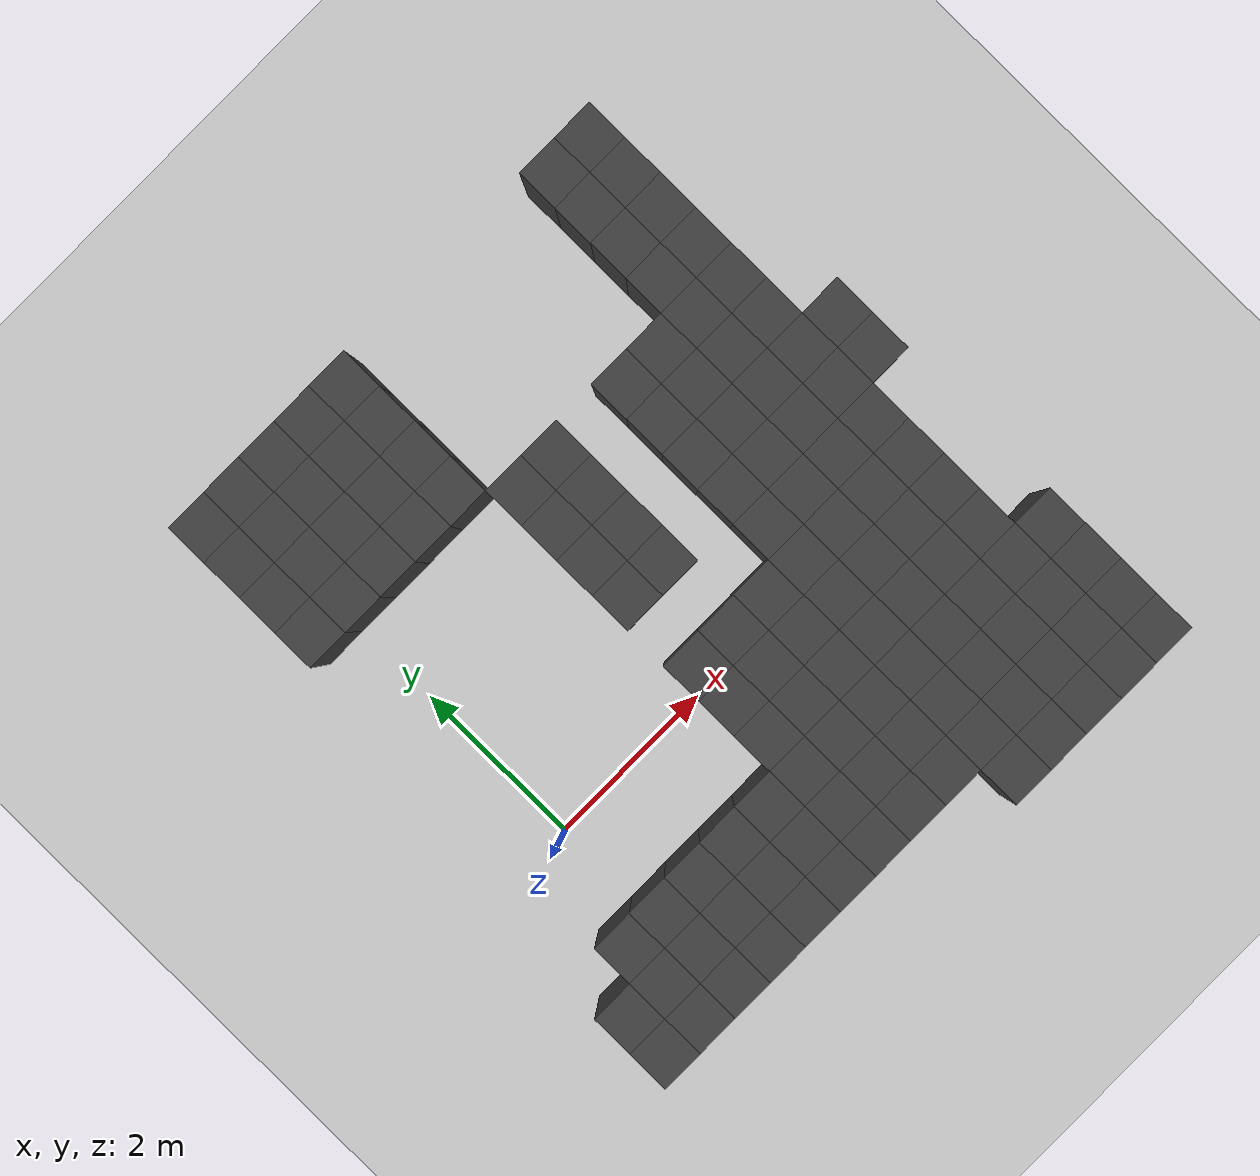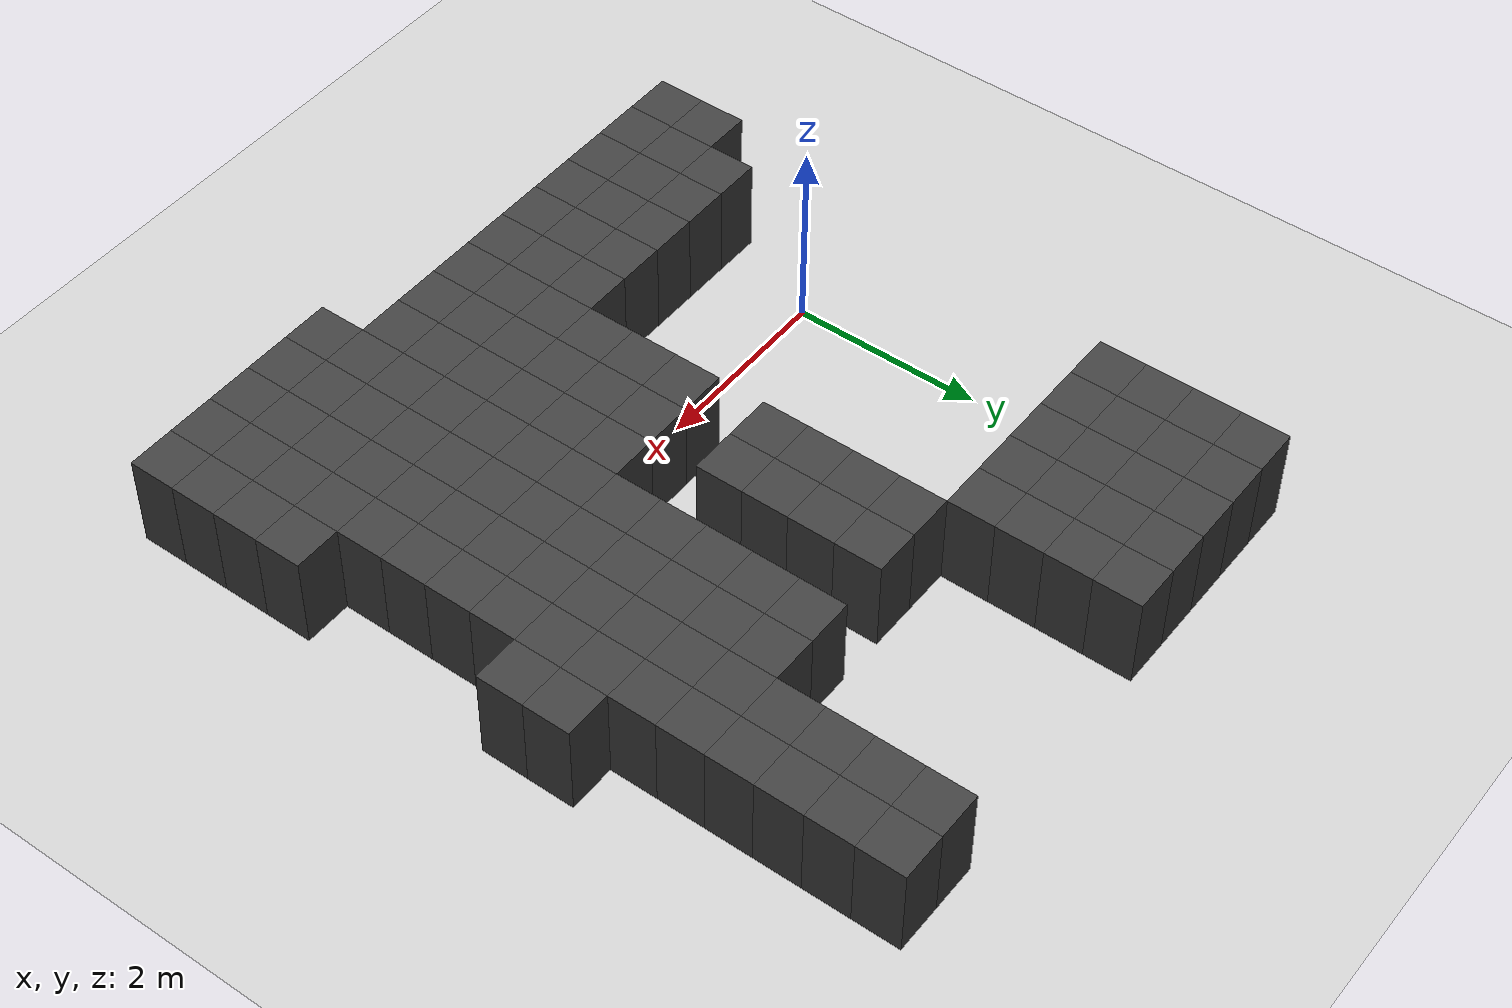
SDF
<sdf version="1.7">
 <world name="map_13994">
  <model name="ground_plane">
   <static>true</static>
   <link name="link">
    <collision name="collision">
     <geometry><plane><normal>0 0 1</normal><size>200 200</size></plane></geometry>
    </collision>
    <visual name="visual">
     <geometry><plane><normal>0 0 1</normal><size>200 200</size></plane></geometry>
     <material><ambient>0.8 0.8 0.8 1</ambient><diffuse>0.8 0.8 0.8 1</diffuse></material>
    </visual>
   </link>
  </model>
  <model name="maze_environment">
   <static>true</static>
   <link name="wall_464">
    <pose>-0.250 4.750 0.500 0 0 0</pose>
    <collision name="col"><geometry><box><size>0.5 0.5 1.0</size></box></geometry></collision>
    <visual name="vis">
     <geometry><box><size>0.5 0.5 1.0</size></box></geometry>
     <material><ambient>0.15 0.15 0.15 1</ambient><diffuse>0.25 0.25 0.25 1</diffuse></material>
    </visual>
   </link>
   <link name="wall_465">
    <pose>0.250 4.750 0.500 0 0 0</pose>
    <collision name="col"><geometry><box><size>0.5 0.5 1.0</size></box></geometry></collision>
    <visual name="vis">
     <geometry><box><size>0.5 0.5 1.0</size></box></geometry>
     <material><ambient>0.15 0.15 0.15 1</ambient><diffuse>0.25 0.25 0.25 1</diffuse></material>
    </visual>
   </link>
   <link name="wall_466">
    <pose>0.750 4.750 0.500 0 0 0</pose>
    <collision name="col"><geometry><box><size>0.5 0.5 1.0</size></box></geometry></collision>
    <visual name="vis">
     <geometry><box><size>0.5 0.5 1.0</size></box></geometry>
     <material><ambient>0.15 0.15 0.15 1</ambient><diffuse>0.25 0.25 0.25 1</diffuse></material>
    </visual>
   </link>
   <link name="wall_467">
    <pose>1.250 4.750 0.500 0 0 0</pose>
    <collision name="col"><geometry><box><size>0.5 0.5 1.0</size></box></geometry></collision>
    <visual name="vis">
     <geometry><box><size>0.5 0.5 1.0</size></box></geometry>
     <material><ambient>0.15 0.15 0.15 1</ambient><diffuse>0.25 0.25 0.25 1</diffuse></material>
    </visual>
   </link>
   <link name="wall_468">
    <pose>1.750 4.750 0.500 0 0 0</pose>
    <collision name="col"><geometry><box><size>0.5 0.5 1.0</size></box></geometry></collision>
    <visual name="vis">
     <geometry><box><size>0.5 0.5 1.0</size></box></geometry>
     <material><ambient>0.15 0.15 0.15 1</ambient><diffuse>0.25 0.25 0.25 1</diffuse></material>
    </visual>
   </link>
   <link name="wall_469">
    <pose>4.750 4.750 0.500 0 0 0</pose>
    <collision name="col"><geometry><box><size>0.5 0.5 1.0</size></box></geometry></collision>
    <visual name="vis">
     <geometry><box><size>0.5 0.5 1.0</size></box></geometry>
     <material><ambient>0.15 0.15 0.15 1</ambient><diffuse>0.25 0.25 0.25 1</diffuse></material>
    </visual>
   </link>
   <link name="wall_470">
    <pose>5.250 4.750 0.500 0 0 0</pose>
    <collision name="col"><geometry><box><size>0.5 0.5 1.0</size></box></geometry></collision>
    <visual name="vis">
     <geometry><box><size>0.5 0.5 1.0</size></box></geometry>
     <material><ambient>0.15 0.15 0.15 1</ambient><diffuse>0.25 0.25 0.25 1</diffuse></material>
    </visual>
   </link>
   <link name="wall_504">
    <pose>-0.250 4.250 0.500 0 0 0</pose>
    <collision name="col"><geometry><box><size>0.5 0.5 1.0</size></box></geometry></collision>
    <visual name="vis">
     <geometry><box><size>0.5 0.5 1.0</size></box></geometry>
     <material><ambient>0.15 0.15 0.15 1</ambient><diffuse>0.25 0.25 0.25 1</diffuse></material>
    </visual>
   </link>
   <link name="wall_505">
    <pose>0.250 4.250 0.500 0 0 0</pose>
    <collision name="col"><geometry><box><size>0.5 0.5 1.0</size></box></geometry></collision>
    <visual name="vis">
     <geometry><box><size>0.5 0.5 1.0</size></box></geometry>
     <material><ambient>0.15 0.15 0.15 1</ambient><diffuse>0.25 0.25 0.25 1</diffuse></material>
    </visual>
   </link>
   <link name="wall_506">
    <pose>0.750 4.250 0.500 0 0 0</pose>
    <collision name="col"><geometry><box><size>0.5 0.5 1.0</size></box></geometry></collision>
    <visual name="vis">
     <geometry><box><size>0.5 0.5 1.0</size></box></geometry>
     <material><ambient>0.15 0.15 0.15 1</ambient><diffuse>0.25 0.25 0.25 1</diffuse></material>
    </visual>
   </link>
   <link name="wall_507">
    <pose>1.250 4.250 0.500 0 0 0</pose>
    <collision name="col"><geometry><box><size>0.5 0.5 1.0</size></box></geometry></collision>
    <visual name="vis">
     <geometry><box><size>0.5 0.5 1.0</size></box></geometry>
     <material><ambient>0.15 0.15 0.15 1</ambient><diffuse>0.25 0.25 0.25 1</diffuse></material>
    </visual>
   </link>
   <link name="wall_508">
    <pose>1.750 4.250 0.500 0 0 0</pose>
    <collision name="col"><geometry><box><size>0.5 0.5 1.0</size></box></geometry></collision>
    <visual name="vis">
     <geometry><box><size>0.5 0.5 1.0</size></box></geometry>
     <material><ambient>0.15 0.15 0.15 1</ambient><diffuse>0.25 0.25 0.25 1</diffuse></material>
    </visual>
   </link>
   <link name="wall_509">
    <pose>4.750 4.250 0.500 0 0 0</pose>
    <collision name="col"><geometry><box><size>0.5 0.5 1.0</size></box></geometry></collision>
    <visual name="vis">
     <geometry><box><size>0.5 0.5 1.0</size></box></geometry>
     <material><ambient>0.15 0.15 0.15 1</ambient><diffuse>0.25 0.25 0.25 1</diffuse></material>
    </visual>
   </link>
   <link name="wall_510">
    <pose>5.250 4.250 0.500 0 0 0</pose>
    <collision name="col"><geometry><box><size>0.5 0.5 1.0</size></box></geometry></collision>
    <visual name="vis">
     <geometry><box><size>0.5 0.5 1.0</size></box></geometry>
     <material><ambient>0.15 0.15 0.15 1</ambient><diffuse>0.25 0.25 0.25 1</diffuse></material>
    </visual>
   </link>
   <link name="wall_544">
    <pose>-0.250 3.750 0.500 0 0 0</pose>
    <collision name="col"><geometry><box><size>0.5 0.5 1.0</size></box></geometry></collision>
    <visual name="vis">
     <geometry><box><size>0.5 0.5 1.0</size></box></geometry>
     <material><ambient>0.15 0.15 0.15 1</ambient><diffuse>0.25 0.25 0.25 1</diffuse></material>
    </visual>
   </link>
   <link name="wall_545">
    <pose>0.250 3.750 0.500 0 0 0</pose>
    <collision name="col"><geometry><box><size>0.5 0.5 1.0</size></box></geometry></collision>
    <visual name="vis">
     <geometry><box><size>0.5 0.5 1.0</size></box></geometry>
     <material><ambient>0.15 0.15 0.15 1</ambient><diffuse>0.25 0.25 0.25 1</diffuse></material>
    </visual>
   </link>
   <link name="wall_546">
    <pose>0.750 3.750 0.500 0 0 0</pose>
    <collision name="col"><geometry><box><size>0.5 0.5 1.0</size></box></geometry></collision>
    <visual name="vis">
     <geometry><box><size>0.5 0.5 1.0</size></box></geometry>
     <material><ambient>0.15 0.15 0.15 1</ambient><diffuse>0.25 0.25 0.25 1</diffuse></material>
    </visual>
   </link>
   <link name="wall_547">
    <pose>1.250 3.750 0.500 0 0 0</pose>
    <collision name="col"><geometry><box><size>0.5 0.5 1.0</size></box></geometry></collision>
    <visual name="vis">
     <geometry><box><size>0.5 0.5 1.0</size></box></geometry>
     <material><ambient>0.15 0.15 0.15 1</ambient><diffuse>0.25 0.25 0.25 1</diffuse></material>
    </visual>
   </link>
   <link name="wall_548">
    <pose>1.750 3.750 0.500 0 0 0</pose>
    <collision name="col"><geometry><box><size>0.5 0.5 1.0</size></box></geometry></collision>
    <visual name="vis">
     <geometry><box><size>0.5 0.5 1.0</size></box></geometry>
     <material><ambient>0.15 0.15 0.15 1</ambient><diffuse>0.25 0.25 0.25 1</diffuse></material>
    </visual>
   </link>
   <link name="wall_549">
    <pose>4.750 3.750 0.500 0 0 0</pose>
    <collision name="col"><geometry><box><size>0.5 0.5 1.0</size></box></geometry></collision>
    <visual name="vis">
     <geometry><box><size>0.5 0.5 1.0</size></box></geometry>
     <material><ambient>0.15 0.15 0.15 1</ambient><diffuse>0.25 0.25 0.25 1</diffuse></material>
    </visual>
   </link>
   <link name="wall_550">
    <pose>5.250 3.750 0.500 0 0 0</pose>
    <collision name="col"><geometry><box><size>0.5 0.5 1.0</size></box></geometry></collision>
    <visual name="vis">
     <geometry><box><size>0.5 0.5 1.0</size></box></geometry>
     <material><ambient>0.15 0.15 0.15 1</ambient><diffuse>0.25 0.25 0.25 1</diffuse></material>
    </visual>
   </link>
   <link name="wall_584">
    <pose>-0.250 3.250 0.500 0 0 0</pose>
    <collision name="col"><geometry><box><size>0.5 0.5 1.0</size></box></geometry></collision>
    <visual name="vis">
     <geometry><box><size>0.5 0.5 1.0</size></box></geometry>
     <material><ambient>0.15 0.15 0.15 1</ambient><diffuse>0.25 0.25 0.25 1</diffuse></material>
    </visual>
   </link>
   <link name="wall_585">
    <pose>0.250 3.250 0.500 0 0 0</pose>
    <collision name="col"><geometry><box><size>0.5 0.5 1.0</size></box></geometry></collision>
    <visual name="vis">
     <geometry><box><size>0.5 0.5 1.0</size></box></geometry>
     <material><ambient>0.15 0.15 0.15 1</ambient><diffuse>0.25 0.25 0.25 1</diffuse></material>
    </visual>
   </link>
   <link name="wall_586">
    <pose>0.750 3.250 0.500 0 0 0</pose>
    <collision name="col"><geometry><box><size>0.5 0.5 1.0</size></box></geometry></collision>
    <visual name="vis">
     <geometry><box><size>0.5 0.5 1.0</size></box></geometry>
     <material><ambient>0.15 0.15 0.15 1</ambient><diffuse>0.25 0.25 0.25 1</diffuse></material>
    </visual>
   </link>
   <link name="wall_587">
    <pose>1.250 3.250 0.500 0 0 0</pose>
    <collision name="col"><geometry><box><size>0.5 0.5 1.0</size></box></geometry></collision>
    <visual name="vis">
     <geometry><box><size>0.5 0.5 1.0</size></box></geometry>
     <material><ambient>0.15 0.15 0.15 1</ambient><diffuse>0.25 0.25 0.25 1</diffuse></material>
    </visual>
   </link>
   <link name="wall_588">
    <pose>1.750 3.250 0.500 0 0 0</pose>
    <collision name="col"><geometry><box><size>0.5 0.5 1.0</size></box></geometry></collision>
    <visual name="vis">
     <geometry><box><size>0.5 0.5 1.0</size></box></geometry>
     <material><ambient>0.15 0.15 0.15 1</ambient><diffuse>0.25 0.25 0.25 1</diffuse></material>
    </visual>
   </link>
   <link name="wall_589">
    <pose>4.750 3.250 0.500 0 0 0</pose>
    <collision name="col"><geometry><box><size>0.5 0.5 1.0</size></box></geometry></collision>
    <visual name="vis">
     <geometry><box><size>0.5 0.5 1.0</size></box></geometry>
     <material><ambient>0.15 0.15 0.15 1</ambient><diffuse>0.25 0.25 0.25 1</diffuse></material>
    </visual>
   </link>
   <link name="wall_590">
    <pose>5.250 3.250 0.500 0 0 0</pose>
    <collision name="col"><geometry><box><size>0.5 0.5 1.0</size></box></geometry></collision>
    <visual name="vis">
     <geometry><box><size>0.5 0.5 1.0</size></box></geometry>
     <material><ambient>0.15 0.15 0.15 1</ambient><diffuse>0.25 0.25 0.25 1</diffuse></material>
    </visual>
   </link>
   <link name="wall_621">
    <pose>2.250 2.750 0.500 0 0 0</pose>
    <collision name="col"><geometry><box><size>0.5 0.5 1.0</size></box></geometry></collision>
    <visual name="vis">
     <geometry><box><size>0.5 0.5 1.0</size></box></geometry>
     <material><ambient>0.15 0.15 0.15 1</ambient><diffuse>0.25 0.25 0.25 1</diffuse></material>
    </visual>
   </link>
   <link name="wall_622">
    <pose>2.750 2.750 0.500 0 0 0</pose>
    <collision name="col"><geometry><box><size>0.5 0.5 1.0</size></box></geometry></collision>
    <visual name="vis">
     <geometry><box><size>0.5 0.5 1.0</size></box></geometry>
     <material><ambient>0.15 0.15 0.15 1</ambient><diffuse>0.25 0.25 0.25 1</diffuse></material>
    </visual>
   </link>
   <link name="wall_623">
    <pose>3.750 2.750 0.500 0 0 0</pose>
    <collision name="col"><geometry><box><size>0.5 0.5 1.0</size></box></geometry></collision>
    <visual name="vis">
     <geometry><box><size>0.5 0.5 1.0</size></box></geometry>
     <material><ambient>0.15 0.15 0.15 1</ambient><diffuse>0.25 0.25 0.25 1</diffuse></material>
    </visual>
   </link>
   <link name="wall_624">
    <pose>4.250 2.750 0.500 0 0 0</pose>
    <collision name="col"><geometry><box><size>0.5 0.5 1.0</size></box></geometry></collision>
    <visual name="vis">
     <geometry><box><size>0.5 0.5 1.0</size></box></geometry>
     <material><ambient>0.15 0.15 0.15 1</ambient><diffuse>0.25 0.25 0.25 1</diffuse></material>
    </visual>
   </link>
   <link name="wall_625">
    <pose>4.750 2.750 0.500 0 0 0</pose>
    <collision name="col"><geometry><box><size>0.5 0.5 1.0</size></box></geometry></collision>
    <visual name="vis">
     <geometry><box><size>0.5 0.5 1.0</size></box></geometry>
     <material><ambient>0.15 0.15 0.15 1</ambient><diffuse>0.25 0.25 0.25 1</diffuse></material>
    </visual>
   </link>
   <link name="wall_626">
    <pose>5.250 2.750 0.500 0 0 0</pose>
    <collision name="col"><geometry><box><size>0.5 0.5 1.0</size></box></geometry></collision>
    <visual name="vis">
     <geometry><box><size>0.5 0.5 1.0</size></box></geometry>
     <material><ambient>0.15 0.15 0.15 1</ambient><diffuse>0.25 0.25 0.25 1</diffuse></material>
    </visual>
   </link>
   <link name="wall_650">
    <pose>2.250 2.250 0.500 0 0 0</pose>
    <collision name="col"><geometry><box><size>0.5 0.5 1.0</size></box></geometry></collision>
    <visual name="vis">
     <geometry><box><size>0.5 0.5 1.0</size></box></geometry>
     <material><ambient>0.15 0.15 0.15 1</ambient><diffuse>0.25 0.25 0.25 1</diffuse></material>
    </visual>
   </link>
   <link name="wall_651">
    <pose>2.750 2.250 0.500 0 0 0</pose>
    <collision name="col"><geometry><box><size>0.5 0.5 1.0</size></box></geometry></collision>
    <visual name="vis">
     <geometry><box><size>0.5 0.5 1.0</size></box></geometry>
     <material><ambient>0.15 0.15 0.15 1</ambient><diffuse>0.25 0.25 0.25 1</diffuse></material>
    </visual>
   </link>
   <link name="wall_652">
    <pose>3.750 2.250 0.500 0 0 0</pose>
    <collision name="col"><geometry><box><size>0.5 0.5 1.0</size></box></geometry></collision>
    <visual name="vis">
     <geometry><box><size>0.5 0.5 1.0</size></box></geometry>
     <material><ambient>0.15 0.15 0.15 1</ambient><diffuse>0.25 0.25 0.25 1</diffuse></material>
    </visual>
   </link>
   <link name="wall_653">
    <pose>4.250 2.250 0.500 0 0 0</pose>
    <collision name="col"><geometry><box><size>0.5 0.5 1.0</size></box></geometry></collision>
    <visual name="vis">
     <geometry><box><size>0.5 0.5 1.0</size></box></geometry>
     <material><ambient>0.15 0.15 0.15 1</ambient><diffuse>0.25 0.25 0.25 1</diffuse></material>
    </visual>
   </link>
   <link name="wall_654">
    <pose>4.750 2.250 0.500 0 0 0</pose>
    <collision name="col"><geometry><box><size>0.5 0.5 1.0</size></box></geometry></collision>
    <visual name="vis">
     <geometry><box><size>0.5 0.5 1.0</size></box></geometry>
     <material><ambient>0.15 0.15 0.15 1</ambient><diffuse>0.25 0.25 0.25 1</diffuse></material>
    </visual>
   </link>
   <link name="wall_655">
    <pose>5.250 2.250 0.500 0 0 0</pose>
    <collision name="col"><geometry><box><size>0.5 0.5 1.0</size></box></geometry></collision>
    <visual name="vis">
     <geometry><box><size>0.5 0.5 1.0</size></box></geometry>
     <material><ambient>0.15 0.15 0.15 1</ambient><diffuse>0.25 0.25 0.25 1</diffuse></material>
    </visual>
   </link>
   <link name="wall_679">
    <pose>2.250 1.750 0.500 0 0 0</pose>
    <collision name="col"><geometry><box><size>0.5 0.5 1.0</size></box></geometry></collision>
    <visual name="vis">
     <geometry><box><size>0.5 0.5 1.0</size></box></geometry>
     <material><ambient>0.15 0.15 0.15 1</ambient><diffuse>0.25 0.25 0.25 1</diffuse></material>
    </visual>
   </link>
   <link name="wall_680">
    <pose>2.750 1.750 0.500 0 0 0</pose>
    <collision name="col"><geometry><box><size>0.5 0.5 1.0</size></box></geometry></collision>
    <visual name="vis">
     <geometry><box><size>0.5 0.5 1.0</size></box></geometry>
     <material><ambient>0.15 0.15 0.15 1</ambient><diffuse>0.25 0.25 0.25 1</diffuse></material>
    </visual>
   </link>
   <link name="wall_681">
    <pose>3.750 1.750 0.500 0 0 0</pose>
    <collision name="col"><geometry><box><size>0.5 0.5 1.0</size></box></geometry></collision>
    <visual name="vis">
     <geometry><box><size>0.5 0.5 1.0</size></box></geometry>
     <material><ambient>0.15 0.15 0.15 1</ambient><diffuse>0.25 0.25 0.25 1</diffuse></material>
    </visual>
   </link>
   <link name="wall_682">
    <pose>4.250 1.750 0.500 0 0 0</pose>
    <collision name="col"><geometry><box><size>0.5 0.5 1.0</size></box></geometry></collision>
    <visual name="vis">
     <geometry><box><size>0.5 0.5 1.0</size></box></geometry>
     <material><ambient>0.15 0.15 0.15 1</ambient><diffuse>0.25 0.25 0.25 1</diffuse></material>
    </visual>
   </link>
   <link name="wall_683">
    <pose>4.750 1.750 0.500 0 0 0</pose>
    <collision name="col"><geometry><box><size>0.5 0.5 1.0</size></box></geometry></collision>
    <visual name="vis">
     <geometry><box><size>0.5 0.5 1.0</size></box></geometry>
     <material><ambient>0.15 0.15 0.15 1</ambient><diffuse>0.25 0.25 0.25 1</diffuse></material>
    </visual>
   </link>
   <link name="wall_684">
    <pose>5.250 1.750 0.500 0 0 0</pose>
    <collision name="col"><geometry><box><size>0.5 0.5 1.0</size></box></geometry></collision>
    <visual name="vis">
     <geometry><box><size>0.5 0.5 1.0</size></box></geometry>
     <material><ambient>0.15 0.15 0.15 1</ambient><diffuse>0.25 0.25 0.25 1</diffuse></material>
    </visual>
   </link>
   <link name="wall_685">
    <pose>5.750 1.750 0.500 0 0 0</pose>
    <collision name="col"><geometry><box><size>0.5 0.5 1.0</size></box></geometry></collision>
    <visual name="vis">
     <geometry><box><size>0.5 0.5 1.0</size></box></geometry>
     <material><ambient>0.15 0.15 0.15 1</ambient><diffuse>0.25 0.25 0.25 1</diffuse></material>
    </visual>
   </link>
   <link name="wall_711">
    <pose>2.250 1.250 0.500 0 0 0</pose>
    <collision name="col"><geometry><box><size>0.5 0.5 1.0</size></box></geometry></collision>
    <visual name="vis">
     <geometry><box><size>0.5 0.5 1.0</size></box></geometry>
     <material><ambient>0.15 0.15 0.15 1</ambient><diffuse>0.25 0.25 0.25 1</diffuse></material>
    </visual>
   </link>
   <link name="wall_712">
    <pose>2.750 1.250 0.500 0 0 0</pose>
    <collision name="col"><geometry><box><size>0.5 0.5 1.0</size></box></geometry></collision>
    <visual name="vis">
     <geometry><box><size>0.5 0.5 1.0</size></box></geometry>
     <material><ambient>0.15 0.15 0.15 1</ambient><diffuse>0.25 0.25 0.25 1</diffuse></material>
    </visual>
   </link>
   <link name="wall_713">
    <pose>3.750 1.250 0.500 0 0 0</pose>
    <collision name="col"><geometry><box><size>0.5 0.5 1.0</size></box></geometry></collision>
    <visual name="vis">
     <geometry><box><size>0.5 0.5 1.0</size></box></geometry>
     <material><ambient>0.15 0.15 0.15 1</ambient><diffuse>0.25 0.25 0.25 1</diffuse></material>
    </visual>
   </link>
   <link name="wall_714">
    <pose>4.250 1.250 0.500 0 0 0</pose>
    <collision name="col"><geometry><box><size>0.5 0.5 1.0</size></box></geometry></collision>
    <visual name="vis">
     <geometry><box><size>0.5 0.5 1.0</size></box></geometry>
     <material><ambient>0.15 0.15 0.15 1</ambient><diffuse>0.25 0.25 0.25 1</diffuse></material>
    </visual>
   </link>
   <link name="wall_715">
    <pose>4.750 1.250 0.500 0 0 0</pose>
    <collision name="col"><geometry><box><size>0.5 0.5 1.0</size></box></geometry></collision>
    <visual name="vis">
     <geometry><box><size>0.5 0.5 1.0</size></box></geometry>
     <material><ambient>0.15 0.15 0.15 1</ambient><diffuse>0.25 0.25 0.25 1</diffuse></material>
    </visual>
   </link>
   <link name="wall_716">
    <pose>5.250 1.250 0.500 0 0 0</pose>
    <collision name="col"><geometry><box><size>0.5 0.5 1.0</size></box></geometry></collision>
    <visual name="vis">
     <geometry><box><size>0.5 0.5 1.0</size></box></geometry>
     <material><ambient>0.15 0.15 0.15 1</ambient><diffuse>0.25 0.25 0.25 1</diffuse></material>
    </visual>
   </link>
   <link name="wall_717">
    <pose>5.750 1.250 0.500 0 0 0</pose>
    <collision name="col"><geometry><box><size>0.5 0.5 1.0</size></box></geometry></collision>
    <visual name="vis">
     <geometry><box><size>0.5 0.5 1.0</size></box></geometry>
     <material><ambient>0.15 0.15 0.15 1</ambient><diffuse>0.25 0.25 0.25 1</diffuse></material>
    </visual>
   </link>
   <link name="wall_744">
    <pose>3.750 0.750 0.500 0 0 0</pose>
    <collision name="col"><geometry><box><size>0.5 0.5 1.0</size></box></geometry></collision>
    <visual name="vis">
     <geometry><box><size>0.5 0.5 1.0</size></box></geometry>
     <material><ambient>0.15 0.15 0.15 1</ambient><diffuse>0.25 0.25 0.25 1</diffuse></material>
    </visual>
   </link>
   <link name="wall_745">
    <pose>4.250 0.750 0.500 0 0 0</pose>
    <collision name="col"><geometry><box><size>0.5 0.5 1.0</size></box></geometry></collision>
    <visual name="vis">
     <geometry><box><size>0.5 0.5 1.0</size></box></geometry>
     <material><ambient>0.15 0.15 0.15 1</ambient><diffuse>0.25 0.25 0.25 1</diffuse></material>
    </visual>
   </link>
   <link name="wall_746">
    <pose>4.750 0.750 0.500 0 0 0</pose>
    <collision name="col"><geometry><box><size>0.5 0.5 1.0</size></box></geometry></collision>
    <visual name="vis">
     <geometry><box><size>0.5 0.5 1.0</size></box></geometry>
     <material><ambient>0.15 0.15 0.15 1</ambient><diffuse>0.25 0.25 0.25 1</diffuse></material>
    </visual>
   </link>
   <link name="wall_747">
    <pose>5.250 0.750 0.500 0 0 0</pose>
    <collision name="col"><geometry><box><size>0.5 0.5 1.0</size></box></geometry></collision>
    <visual name="vis">
     <geometry><box><size>0.5 0.5 1.0</size></box></geometry>
     <material><ambient>0.15 0.15 0.15 1</ambient><diffuse>0.25 0.25 0.25 1</diffuse></material>
    </visual>
   </link>
   <link name="wall_770">
    <pose>2.250 0.250 0.500 0 0 0</pose>
    <collision name="col"><geometry><box><size>0.5 0.5 1.0</size></box></geometry></collision>
    <visual name="vis">
     <geometry><box><size>0.5 0.5 1.0</size></box></geometry>
     <material><ambient>0.15 0.15 0.15 1</ambient><diffuse>0.25 0.25 0.25 1</diffuse></material>
    </visual>
   </link>
   <link name="wall_771">
    <pose>2.750 0.250 0.500 0 0 0</pose>
    <collision name="col"><geometry><box><size>0.5 0.5 1.0</size></box></geometry></collision>
    <visual name="vis">
     <geometry><box><size>0.5 0.5 1.0</size></box></geometry>
     <material><ambient>0.15 0.15 0.15 1</ambient><diffuse>0.25 0.25 0.25 1</diffuse></material>
    </visual>
   </link>
   <link name="wall_772">
    <pose>3.250 0.250 0.500 0 0 0</pose>
    <collision name="col"><geometry><box><size>0.5 0.5 1.0</size></box></geometry></collision>
    <visual name="vis">
     <geometry><box><size>0.5 0.5 1.0</size></box></geometry>
     <material><ambient>0.15 0.15 0.15 1</ambient><diffuse>0.25 0.25 0.25 1</diffuse></material>
    </visual>
   </link>
   <link name="wall_773">
    <pose>3.750 0.250 0.500 0 0 0</pose>
    <collision name="col"><geometry><box><size>0.5 0.5 1.0</size></box></geometry></collision>
    <visual name="vis">
     <geometry><box><size>0.5 0.5 1.0</size></box></geometry>
     <material><ambient>0.15 0.15 0.15 1</ambient><diffuse>0.25 0.25 0.25 1</diffuse></material>
    </visual>
   </link>
   <link name="wall_774">
    <pose>4.250 0.250 0.500 0 0 0</pose>
    <collision name="col"><geometry><box><size>0.5 0.5 1.0</size></box></geometry></collision>
    <visual name="vis">
     <geometry><box><size>0.5 0.5 1.0</size></box></geometry>
     <material><ambient>0.15 0.15 0.15 1</ambient><diffuse>0.25 0.25 0.25 1</diffuse></material>
    </visual>
   </link>
   <link name="wall_775">
    <pose>4.750 0.250 0.500 0 0 0</pose>
    <collision name="col"><geometry><box><size>0.5 0.5 1.0</size></box></geometry></collision>
    <visual name="vis">
     <geometry><box><size>0.5 0.5 1.0</size></box></geometry>
     <material><ambient>0.15 0.15 0.15 1</ambient><diffuse>0.25 0.25 0.25 1</diffuse></material>
    </visual>
   </link>
   <link name="wall_776">
    <pose>5.250 0.250 0.500 0 0 0</pose>
    <collision name="col"><geometry><box><size>0.5 0.5 1.0</size></box></geometry></collision>
    <visual name="vis">
     <geometry><box><size>0.5 0.5 1.0</size></box></geometry>
     <material><ambient>0.15 0.15 0.15 1</ambient><diffuse>0.25 0.25 0.25 1</diffuse></material>
    </visual>
   </link>
   <link name="wall_805">
    <pose>2.250 -0.250 0.500 0 0 0</pose>
    <collision name="col"><geometry><box><size>0.5 0.5 1.0</size></box></geometry></collision>
    <visual name="vis">
     <geometry><box><size>0.5 0.5 1.0</size></box></geometry>
     <material><ambient>0.15 0.15 0.15 1</ambient><diffuse>0.25 0.25 0.25 1</diffuse></material>
    </visual>
   </link>
   <link name="wall_806">
    <pose>2.750 -0.250 0.500 0 0 0</pose>
    <collision name="col"><geometry><box><size>0.5 0.5 1.0</size></box></geometry></collision>
    <visual name="vis">
     <geometry><box><size>0.5 0.5 1.0</size></box></geometry>
     <material><ambient>0.15 0.15 0.15 1</ambient><diffuse>0.25 0.25 0.25 1</diffuse></material>
    </visual>
   </link>
   <link name="wall_807">
    <pose>3.250 -0.250 0.500 0 0 0</pose>
    <collision name="col"><geometry><box><size>0.5 0.5 1.0</size></box></geometry></collision>
    <visual name="vis">
     <geometry><box><size>0.5 0.5 1.0</size></box></geometry>
     <material><ambient>0.15 0.15 0.15 1</ambient><diffuse>0.25 0.25 0.25 1</diffuse></material>
    </visual>
   </link>
   <link name="wall_808">
    <pose>3.750 -0.250 0.500 0 0 0</pose>
    <collision name="col"><geometry><box><size>0.5 0.5 1.0</size></box></geometry></collision>
    <visual name="vis">
     <geometry><box><size>0.5 0.5 1.0</size></box></geometry>
     <material><ambient>0.15 0.15 0.15 1</ambient><diffuse>0.25 0.25 0.25 1</diffuse></material>
    </visual>
   </link>
   <link name="wall_809">
    <pose>4.250 -0.250 0.500 0 0 0</pose>
    <collision name="col"><geometry><box><size>0.5 0.5 1.0</size></box></geometry></collision>
    <visual name="vis">
     <geometry><box><size>0.5 0.5 1.0</size></box></geometry>
     <material><ambient>0.15 0.15 0.15 1</ambient><diffuse>0.25 0.25 0.25 1</diffuse></material>
    </visual>
   </link>
   <link name="wall_810">
    <pose>4.750 -0.250 0.500 0 0 0</pose>
    <collision name="col"><geometry><box><size>0.5 0.5 1.0</size></box></geometry></collision>
    <visual name="vis">
     <geometry><box><size>0.5 0.5 1.0</size></box></geometry>
     <material><ambient>0.15 0.15 0.15 1</ambient><diffuse>0.25 0.25 0.25 1</diffuse></material>
    </visual>
   </link>
   <link name="wall_811">
    <pose>5.250 -0.250 0.500 0 0 0</pose>
    <collision name="col"><geometry><box><size>0.5 0.5 1.0</size></box></geometry></collision>
    <visual name="vis">
     <geometry><box><size>0.5 0.5 1.0</size></box></geometry>
     <material><ambient>0.15 0.15 0.15 1</ambient><diffuse>0.25 0.25 0.25 1</diffuse></material>
    </visual>
   </link>
   <link name="wall_836">
    <pose>2.250 -0.750 0.500 0 0 0</pose>
    <collision name="col"><geometry><box><size>0.5 0.5 1.0</size></box></geometry></collision>
    <visual name="vis">
     <geometry><box><size>0.5 0.5 1.0</size></box></geometry>
     <material><ambient>0.15 0.15 0.15 1</ambient><diffuse>0.25 0.25 0.25 1</diffuse></material>
    </visual>
   </link>
   <link name="wall_837">
    <pose>2.750 -0.750 0.500 0 0 0</pose>
    <collision name="col"><geometry><box><size>0.5 0.5 1.0</size></box></geometry></collision>
    <visual name="vis">
     <geometry><box><size>0.5 0.5 1.0</size></box></geometry>
     <material><ambient>0.15 0.15 0.15 1</ambient><diffuse>0.25 0.25 0.25 1</diffuse></material>
    </visual>
   </link>
   <link name="wall_838">
    <pose>3.250 -0.750 0.500 0 0 0</pose>
    <collision name="col"><geometry><box><size>0.5 0.5 1.0</size></box></geometry></collision>
    <visual name="vis">
     <geometry><box><size>0.5 0.5 1.0</size></box></geometry>
     <material><ambient>0.15 0.15 0.15 1</ambient><diffuse>0.25 0.25 0.25 1</diffuse></material>
    </visual>
   </link>
   <link name="wall_839">
    <pose>3.750 -0.750 0.500 0 0 0</pose>
    <collision name="col"><geometry><box><size>0.5 0.5 1.0</size></box></geometry></collision>
    <visual name="vis">
     <geometry><box><size>0.5 0.5 1.0</size></box></geometry>
     <material><ambient>0.15 0.15 0.15 1</ambient><diffuse>0.25 0.25 0.25 1</diffuse></material>
    </visual>
   </link>
   <link name="wall_840">
    <pose>4.250 -0.750 0.500 0 0 0</pose>
    <collision name="col"><geometry><box><size>0.5 0.5 1.0</size></box></geometry></collision>
    <visual name="vis">
     <geometry><box><size>0.5 0.5 1.0</size></box></geometry>
     <material><ambient>0.15 0.15 0.15 1</ambient><diffuse>0.25 0.25 0.25 1</diffuse></material>
    </visual>
   </link>
   <link name="wall_841">
    <pose>4.750 -0.750 0.500 0 0 0</pose>
    <collision name="col"><geometry><box><size>0.5 0.5 1.0</size></box></geometry></collision>
    <visual name="vis">
     <geometry><box><size>0.5 0.5 1.0</size></box></geometry>
     <material><ambient>0.15 0.15 0.15 1</ambient><diffuse>0.25 0.25 0.25 1</diffuse></material>
    </visual>
   </link>
   <link name="wall_842">
    <pose>5.250 -0.750 0.500 0 0 0</pose>
    <collision name="col"><geometry><box><size>0.5 0.5 1.0</size></box></geometry></collision>
    <visual name="vis">
     <geometry><box><size>0.5 0.5 1.0</size></box></geometry>
     <material><ambient>0.15 0.15 0.15 1</ambient><diffuse>0.25 0.25 0.25 1</diffuse></material>
    </visual>
   </link>
   <link name="wall_875">
    <pose>-0.250 -1.250 0.500 0 0 0</pose>
    <collision name="col"><geometry><box><size>0.5 0.5 1.0</size></box></geometry></collision>
    <visual name="vis">
     <geometry><box><size>0.5 0.5 1.0</size></box></geometry>
     <material><ambient>0.15 0.15 0.15 1</ambient><diffuse>0.25 0.25 0.25 1</diffuse></material>
    </visual>
   </link>
   <link name="wall_876">
    <pose>0.250 -1.250 0.500 0 0 0</pose>
    <collision name="col"><geometry><box><size>0.5 0.5 1.0</size></box></geometry></collision>
    <visual name="vis">
     <geometry><box><size>0.5 0.5 1.0</size></box></geometry>
     <material><ambient>0.15 0.15 0.15 1</ambient><diffuse>0.25 0.25 0.25 1</diffuse></material>
    </visual>
   </link>
   <link name="wall_877">
    <pose>0.750 -1.250 0.500 0 0 0</pose>
    <collision name="col"><geometry><box><size>0.5 0.5 1.0</size></box></geometry></collision>
    <visual name="vis">
     <geometry><box><size>0.5 0.5 1.0</size></box></geometry>
     <material><ambient>0.15 0.15 0.15 1</ambient><diffuse>0.25 0.25 0.25 1</diffuse></material>
    </visual>
   </link>
   <link name="wall_878">
    <pose>1.250 -1.250 0.500 0 0 0</pose>
    <collision name="col"><geometry><box><size>0.5 0.5 1.0</size></box></geometry></collision>
    <visual name="vis">
     <geometry><box><size>0.5 0.5 1.0</size></box></geometry>
     <material><ambient>0.15 0.15 0.15 1</ambient><diffuse>0.25 0.25 0.25 1</diffuse></material>
    </visual>
   </link>
   <link name="wall_879">
    <pose>1.750 -1.250 0.500 0 0 0</pose>
    <collision name="col"><geometry><box><size>0.5 0.5 1.0</size></box></geometry></collision>
    <visual name="vis">
     <geometry><box><size>0.5 0.5 1.0</size></box></geometry>
     <material><ambient>0.15 0.15 0.15 1</ambient><diffuse>0.25 0.25 0.25 1</diffuse></material>
    </visual>
   </link>
   <link name="wall_880">
    <pose>2.250 -1.250 0.500 0 0 0</pose>
    <collision name="col"><geometry><box><size>0.5 0.5 1.0</size></box></geometry></collision>
    <visual name="vis">
     <geometry><box><size>0.5 0.5 1.0</size></box></geometry>
     <material><ambient>0.15 0.15 0.15 1</ambient><diffuse>0.25 0.25 0.25 1</diffuse></material>
    </visual>
   </link>
   <link name="wall_881">
    <pose>2.750 -1.250 0.500 0 0 0</pose>
    <collision name="col"><geometry><box><size>0.5 0.5 1.0</size></box></geometry></collision>
    <visual name="vis">
     <geometry><box><size>0.5 0.5 1.0</size></box></geometry>
     <material><ambient>0.15 0.15 0.15 1</ambient><diffuse>0.25 0.25 0.25 1</diffuse></material>
    </visual>
   </link>
   <link name="wall_882">
    <pose>3.250 -1.250 0.500 0 0 0</pose>
    <collision name="col"><geometry><box><size>0.5 0.5 1.0</size></box></geometry></collision>
    <visual name="vis">
     <geometry><box><size>0.5 0.5 1.0</size></box></geometry>
     <material><ambient>0.15 0.15 0.15 1</ambient><diffuse>0.25 0.25 0.25 1</diffuse></material>
    </visual>
   </link>
   <link name="wall_883">
    <pose>3.750 -1.250 0.500 0 0 0</pose>
    <collision name="col"><geometry><box><size>0.5 0.5 1.0</size></box></geometry></collision>
    <visual name="vis">
     <geometry><box><size>0.5 0.5 1.0</size></box></geometry>
     <material><ambient>0.15 0.15 0.15 1</ambient><diffuse>0.25 0.25 0.25 1</diffuse></material>
    </visual>
   </link>
   <link name="wall_884">
    <pose>4.250 -1.250 0.500 0 0 0</pose>
    <collision name="col"><geometry><box><size>0.5 0.5 1.0</size></box></geometry></collision>
    <visual name="vis">
     <geometry><box><size>0.5 0.5 1.0</size></box></geometry>
     <material><ambient>0.15 0.15 0.15 1</ambient><diffuse>0.25 0.25 0.25 1</diffuse></material>
    </visual>
   </link>
   <link name="wall_885">
    <pose>4.750 -1.250 0.500 0 0 0</pose>
    <collision name="col"><geometry><box><size>0.5 0.5 1.0</size></box></geometry></collision>
    <visual name="vis">
     <geometry><box><size>0.5 0.5 1.0</size></box></geometry>
     <material><ambient>0.15 0.15 0.15 1</ambient><diffuse>0.25 0.25 0.25 1</diffuse></material>
    </visual>
   </link>
   <link name="wall_886">
    <pose>5.250 -1.250 0.500 0 0 0</pose>
    <collision name="col"><geometry><box><size>0.5 0.5 1.0</size></box></geometry></collision>
    <visual name="vis">
     <geometry><box><size>0.5 0.5 1.0</size></box></geometry>
     <material><ambient>0.15 0.15 0.15 1</ambient><diffuse>0.25 0.25 0.25 1</diffuse></material>
    </visual>
   </link>
   <link name="wall_887">
    <pose>5.750 -1.250 0.500 0 0 0</pose>
    <collision name="col"><geometry><box><size>0.5 0.5 1.0</size></box></geometry></collision>
    <visual name="vis">
     <geometry><box><size>0.5 0.5 1.0</size></box></geometry>
     <material><ambient>0.15 0.15 0.15 1</ambient><diffuse>0.25 0.25 0.25 1</diffuse></material>
    </visual>
   </link>
   <link name="wall_915">
    <pose>-0.750 -1.750 0.500 0 0 0</pose>
    <collision name="col"><geometry><box><size>0.5 0.5 1.0</size></box></geometry></collision>
    <visual name="vis">
     <geometry><box><size>0.5 0.5 1.0</size></box></geometry>
     <material><ambient>0.15 0.15 0.15 1</ambient><diffuse>0.25 0.25 0.25 1</diffuse></material>
    </visual>
   </link>
   <link name="wall_916">
    <pose>-0.250 -1.750 0.500 0 0 0</pose>
    <collision name="col"><geometry><box><size>0.5 0.5 1.0</size></box></geometry></collision>
    <visual name="vis">
     <geometry><box><size>0.5 0.5 1.0</size></box></geometry>
     <material><ambient>0.15 0.15 0.15 1</ambient><diffuse>0.25 0.25 0.25 1</diffuse></material>
    </visual>
   </link>
   <link name="wall_917">
    <pose>0.250 -1.750 0.500 0 0 0</pose>
    <collision name="col"><geometry><box><size>0.5 0.5 1.0</size></box></geometry></collision>
    <visual name="vis">
     <geometry><box><size>0.5 0.5 1.0</size></box></geometry>
     <material><ambient>0.15 0.15 0.15 1</ambient><diffuse>0.25 0.25 0.25 1</diffuse></material>
    </visual>
   </link>
   <link name="wall_918">
    <pose>0.750 -1.750 0.500 0 0 0</pose>
    <collision name="col"><geometry><box><size>0.5 0.5 1.0</size></box></geometry></collision>
    <visual name="vis">
     <geometry><box><size>0.5 0.5 1.0</size></box></geometry>
     <material><ambient>0.15 0.15 0.15 1</ambient><diffuse>0.25 0.25 0.25 1</diffuse></material>
    </visual>
   </link>
   <link name="wall_919">
    <pose>1.250 -1.750 0.500 0 0 0</pose>
    <collision name="col"><geometry><box><size>0.5 0.5 1.0</size></box></geometry></collision>
    <visual name="vis">
     <geometry><box><size>0.5 0.5 1.0</size></box></geometry>
     <material><ambient>0.15 0.15 0.15 1</ambient><diffuse>0.25 0.25 0.25 1</diffuse></material>
    </visual>
   </link>
   <link name="wall_920">
    <pose>1.750 -1.750 0.500 0 0 0</pose>
    <collision name="col"><geometry><box><size>0.5 0.5 1.0</size></box></geometry></collision>
    <visual name="vis">
     <geometry><box><size>0.5 0.5 1.0</size></box></geometry>
     <material><ambient>0.15 0.15 0.15 1</ambient><diffuse>0.25 0.25 0.25 1</diffuse></material>
    </visual>
   </link>
   <link name="wall_921">
    <pose>2.250 -1.750 0.500 0 0 0</pose>
    <collision name="col"><geometry><box><size>0.5 0.5 1.0</size></box></geometry></collision>
    <visual name="vis">
     <geometry><box><size>0.5 0.5 1.0</size></box></geometry>
     <material><ambient>0.15 0.15 0.15 1</ambient><diffuse>0.25 0.25 0.25 1</diffuse></material>
    </visual>
   </link>
   <link name="wall_922">
    <pose>2.750 -1.750 0.500 0 0 0</pose>
    <collision name="col"><geometry><box><size>0.5 0.5 1.0</size></box></geometry></collision>
    <visual name="vis">
     <geometry><box><size>0.5 0.5 1.0</size></box></geometry>
     <material><ambient>0.15 0.15 0.15 1</ambient><diffuse>0.25 0.25 0.25 1</diffuse></material>
    </visual>
   </link>
   <link name="wall_923">
    <pose>3.250 -1.750 0.500 0 0 0</pose>
    <collision name="col"><geometry><box><size>0.5 0.5 1.0</size></box></geometry></collision>
    <visual name="vis">
     <geometry><box><size>0.5 0.5 1.0</size></box></geometry>
     <material><ambient>0.15 0.15 0.15 1</ambient><diffuse>0.25 0.25 0.25 1</diffuse></material>
    </visual>
   </link>
   <link name="wall_924">
    <pose>3.750 -1.750 0.500 0 0 0</pose>
    <collision name="col"><geometry><box><size>0.5 0.5 1.0</size></box></geometry></collision>
    <visual name="vis">
     <geometry><box><size>0.5 0.5 1.0</size></box></geometry>
     <material><ambient>0.15 0.15 0.15 1</ambient><diffuse>0.25 0.25 0.25 1</diffuse></material>
    </visual>
   </link>
   <link name="wall_925">
    <pose>4.250 -1.750 0.500 0 0 0</pose>
    <collision name="col"><geometry><box><size>0.5 0.5 1.0</size></box></geometry></collision>
    <visual name="vis">
     <geometry><box><size>0.5 0.5 1.0</size></box></geometry>
     <material><ambient>0.15 0.15 0.15 1</ambient><diffuse>0.25 0.25 0.25 1</diffuse></material>
    </visual>
   </link>
   <link name="wall_926">
    <pose>4.750 -1.750 0.500 0 0 0</pose>
    <collision name="col"><geometry><box><size>0.5 0.5 1.0</size></box></geometry></collision>
    <visual name="vis">
     <geometry><box><size>0.5 0.5 1.0</size></box></geometry>
     <material><ambient>0.15 0.15 0.15 1</ambient><diffuse>0.25 0.25 0.25 1</diffuse></material>
    </visual>
   </link>
   <link name="wall_927">
    <pose>5.250 -1.750 0.500 0 0 0</pose>
    <collision name="col"><geometry><box><size>0.5 0.5 1.0</size></box></geometry></collision>
    <visual name="vis">
     <geometry><box><size>0.5 0.5 1.0</size></box></geometry>
     <material><ambient>0.15 0.15 0.15 1</ambient><diffuse>0.25 0.25 0.25 1</diffuse></material>
    </visual>
   </link>
   <link name="wall_928">
    <pose>5.750 -1.750 0.500 0 0 0</pose>
    <collision name="col"><geometry><box><size>0.5 0.5 1.0</size></box></geometry></collision>
    <visual name="vis">
     <geometry><box><size>0.5 0.5 1.0</size></box></geometry>
     <material><ambient>0.15 0.15 0.15 1</ambient><diffuse>0.25 0.25 0.25 1</diffuse></material>
    </visual>
   </link>
   <link name="wall_956">
    <pose>-0.750 -2.250 0.500 0 0 0</pose>
    <collision name="col"><geometry><box><size>0.5 0.5 1.0</size></box></geometry></collision>
    <visual name="vis">
     <geometry><box><size>0.5 0.5 1.0</size></box></geometry>
     <material><ambient>0.15 0.15 0.15 1</ambient><diffuse>0.25 0.25 0.25 1</diffuse></material>
    </visual>
   </link>
   <link name="wall_957">
    <pose>-0.250 -2.250 0.500 0 0 0</pose>
    <collision name="col"><geometry><box><size>0.5 0.5 1.0</size></box></geometry></collision>
    <visual name="vis">
     <geometry><box><size>0.5 0.5 1.0</size></box></geometry>
     <material><ambient>0.15 0.15 0.15 1</ambient><diffuse>0.25 0.25 0.25 1</diffuse></material>
    </visual>
   </link>
   <link name="wall_958">
    <pose>0.250 -2.250 0.500 0 0 0</pose>
    <collision name="col"><geometry><box><size>0.5 0.5 1.0</size></box></geometry></collision>
    <visual name="vis">
     <geometry><box><size>0.5 0.5 1.0</size></box></geometry>
     <material><ambient>0.15 0.15 0.15 1</ambient><diffuse>0.25 0.25 0.25 1</diffuse></material>
    </visual>
   </link>
   <link name="wall_959">
    <pose>0.750 -2.250 0.500 0 0 0</pose>
    <collision name="col"><geometry><box><size>0.5 0.5 1.0</size></box></geometry></collision>
    <visual name="vis">
     <geometry><box><size>0.5 0.5 1.0</size></box></geometry>
     <material><ambient>0.15 0.15 0.15 1</ambient><diffuse>0.25 0.25 0.25 1</diffuse></material>
    </visual>
   </link>
   <link name="wall_960">
    <pose>1.250 -2.250 0.500 0 0 0</pose>
    <collision name="col"><geometry><box><size>0.5 0.5 1.0</size></box></geometry></collision>
    <visual name="vis">
     <geometry><box><size>0.5 0.5 1.0</size></box></geometry>
     <material><ambient>0.15 0.15 0.15 1</ambient><diffuse>0.25 0.25 0.25 1</diffuse></material>
    </visual>
   </link>
   <link name="wall_961">
    <pose>1.750 -2.250 0.500 0 0 0</pose>
    <collision name="col"><geometry><box><size>0.5 0.5 1.0</size></box></geometry></collision>
    <visual name="vis">
     <geometry><box><size>0.5 0.5 1.0</size></box></geometry>
     <material><ambient>0.15 0.15 0.15 1</ambient><diffuse>0.25 0.25 0.25 1</diffuse></material>
    </visual>
   </link>
   <link name="wall_962">
    <pose>2.250 -2.250 0.500 0 0 0</pose>
    <collision name="col"><geometry><box><size>0.5 0.5 1.0</size></box></geometry></collision>
    <visual name="vis">
     <geometry><box><size>0.5 0.5 1.0</size></box></geometry>
     <material><ambient>0.15 0.15 0.15 1</ambient><diffuse>0.25 0.25 0.25 1</diffuse></material>
    </visual>
   </link>
   <link name="wall_963">
    <pose>2.750 -2.250 0.500 0 0 0</pose>
    <collision name="col"><geometry><box><size>0.5 0.5 1.0</size></box></geometry></collision>
    <visual name="vis">
     <geometry><box><size>0.5 0.5 1.0</size></box></geometry>
     <material><ambient>0.15 0.15 0.15 1</ambient><diffuse>0.25 0.25 0.25 1</diffuse></material>
    </visual>
   </link>
   <link name="wall_964">
    <pose>3.250 -2.250 0.500 0 0 0</pose>
    <collision name="col"><geometry><box><size>0.5 0.5 1.0</size></box></geometry></collision>
    <visual name="vis">
     <geometry><box><size>0.5 0.5 1.0</size></box></geometry>
     <material><ambient>0.15 0.15 0.15 1</ambient><diffuse>0.25 0.25 0.25 1</diffuse></material>
    </visual>
   </link>
   <link name="wall_965">
    <pose>3.750 -2.250 0.500 0 0 0</pose>
    <collision name="col"><geometry><box><size>0.5 0.5 1.0</size></box></geometry></collision>
    <visual name="vis">
     <geometry><box><size>0.5 0.5 1.0</size></box></geometry>
     <material><ambient>0.15 0.15 0.15 1</ambient><diffuse>0.25 0.25 0.25 1</diffuse></material>
    </visual>
   </link>
   <link name="wall_966">
    <pose>4.250 -2.250 0.500 0 0 0</pose>
    <collision name="col"><geometry><box><size>0.5 0.5 1.0</size></box></geometry></collision>
    <visual name="vis">
     <geometry><box><size>0.5 0.5 1.0</size></box></geometry>
     <material><ambient>0.15 0.15 0.15 1</ambient><diffuse>0.25 0.25 0.25 1</diffuse></material>
    </visual>
   </link>
   <link name="wall_967">
    <pose>4.750 -2.250 0.500 0 0 0</pose>
    <collision name="col"><geometry><box><size>0.5 0.5 1.0</size></box></geometry></collision>
    <visual name="vis">
     <geometry><box><size>0.5 0.5 1.0</size></box></geometry>
     <material><ambient>0.15 0.15 0.15 1</ambient><diffuse>0.25 0.25 0.25 1</diffuse></material>
    </visual>
   </link>
   <link name="wall_968">
    <pose>5.250 -2.250 0.500 0 0 0</pose>
    <collision name="col"><geometry><box><size>0.5 0.5 1.0</size></box></geometry></collision>
    <visual name="vis">
     <geometry><box><size>0.5 0.5 1.0</size></box></geometry>
     <material><ambient>0.15 0.15 0.15 1</ambient><diffuse>0.25 0.25 0.25 1</diffuse></material>
    </visual>
   </link>
   <link name="wall_969">
    <pose>5.750 -2.250 0.500 0 0 0</pose>
    <collision name="col"><geometry><box><size>0.5 0.5 1.0</size></box></geometry></collision>
    <visual name="vis">
     <geometry><box><size>0.5 0.5 1.0</size></box></geometry>
     <material><ambient>0.15 0.15 0.15 1</ambient><diffuse>0.25 0.25 0.25 1</diffuse></material>
    </visual>
   </link>
   <link name="wall_1006">
    <pose>3.750 -2.750 0.500 0 0 0</pose>
    <collision name="col"><geometry><box><size>0.5 0.5 1.0</size></box></geometry></collision>
    <visual name="vis">
     <geometry><box><size>0.5 0.5 1.0</size></box></geometry>
     <material><ambient>0.15 0.15 0.15 1</ambient><diffuse>0.25 0.25 0.25 1</diffuse></material>
    </visual>
   </link>
   <link name="wall_1007">
    <pose>4.250 -2.750 0.500 0 0 0</pose>
    <collision name="col"><geometry><box><size>0.5 0.5 1.0</size></box></geometry></collision>
    <visual name="vis">
     <geometry><box><size>0.5 0.5 1.0</size></box></geometry>
     <material><ambient>0.15 0.15 0.15 1</ambient><diffuse>0.25 0.25 0.25 1</diffuse></material>
    </visual>
   </link>
   <link name="wall_1008">
    <pose>4.750 -2.750 0.500 0 0 0</pose>
    <collision name="col"><geometry><box><size>0.5 0.5 1.0</size></box></geometry></collision>
    <visual name="vis">
     <geometry><box><size>0.5 0.5 1.0</size></box></geometry>
     <material><ambient>0.15 0.15 0.15 1</ambient><diffuse>0.25 0.25 0.25 1</diffuse></material>
    </visual>
   </link>
   <link name="wall_1009">
    <pose>5.250 -2.750 0.500 0 0 0</pose>
    <collision name="col"><geometry><box><size>0.5 0.5 1.0</size></box></geometry></collision>
    <visual name="vis">
     <geometry><box><size>0.5 0.5 1.0</size></box></geometry>
     <material><ambient>0.15 0.15 0.15 1</ambient><diffuse>0.25 0.25 0.25 1</diffuse></material>
    </visual>
   </link>
   <link name="wall_1010">
    <pose>5.750 -2.750 0.500 0 0 0</pose>
    <collision name="col"><geometry><box><size>0.5 0.5 1.0</size></box></geometry></collision>
    <visual name="vis">
     <geometry><box><size>0.5 0.5 1.0</size></box></geometry>
     <material><ambient>0.15 0.15 0.15 1</ambient><diffuse>0.25 0.25 0.25 1</diffuse></material>
    </visual>
   </link>
  </model>
 </world>
</sdf>
